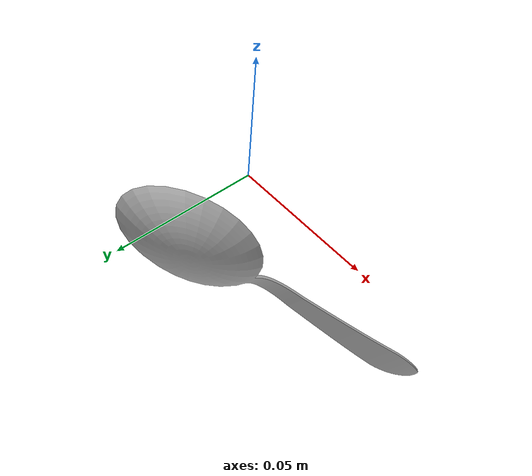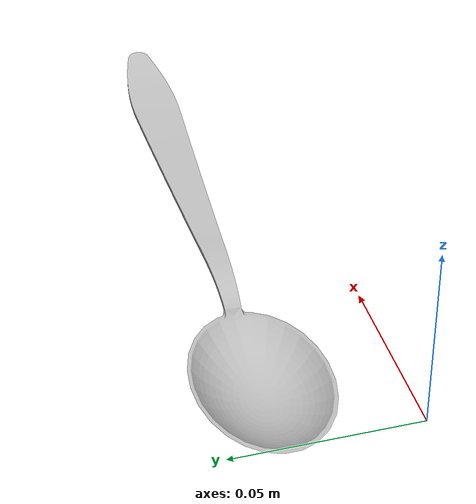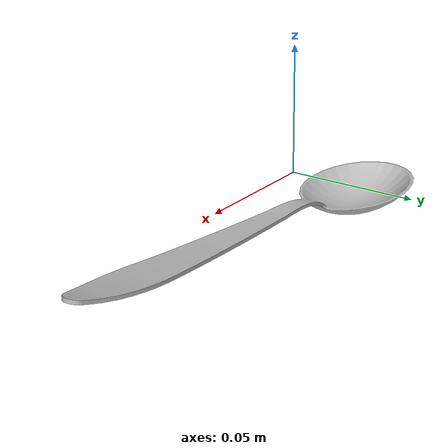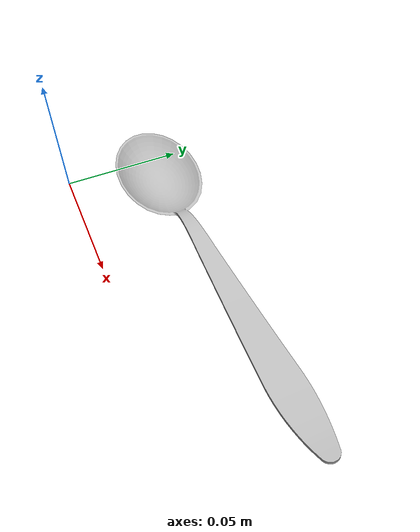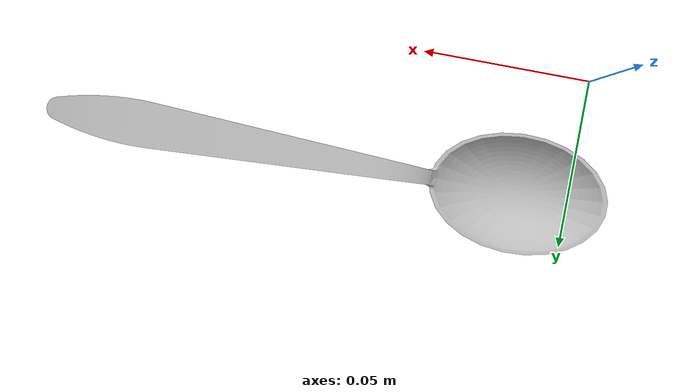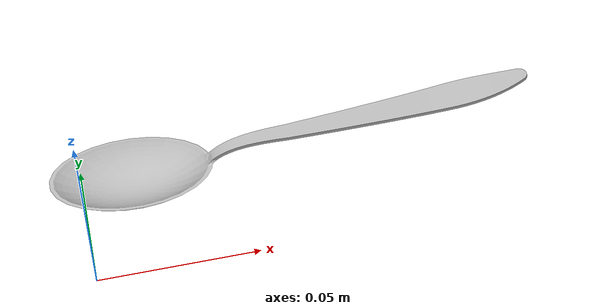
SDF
<?xml version="1.0" ?>

<sdf version="1.6">
  <model name="fork">
    <link name="link_0">
      <inertial>
        <mass>10</mass>
        <inertia>
          <ixx>0.0125</ixx>
          <ixy>0.0</ixy>
          <ixz>0.0</ixz>
          <iyy>0.004167</iyy>
          <iyz>0.0</iyz>
          <izz>0.0125</izz>
        </inertia>
      </inertial>
      <visual name="visual">
        <geometry>
          <mesh>
            <uri>meshes/model.obj</uri>
            <scale> 0.03 0.03 0.03 </scale>
          </mesh>
        </geometry>
      </visual>
      <collision name="collision_0">
        <geometry>
          <box>
            <size>0.15 0.05 0.05</size>
          </box>
        </geometry>
        <surface>
          <friction>
            <ode>
              <mu>10.0</mu>
              <mu2>10.0</mu2>
            </ode>
          </friction>
        </surface>
      </collision>
    </link>
  </model>
</sdf>
